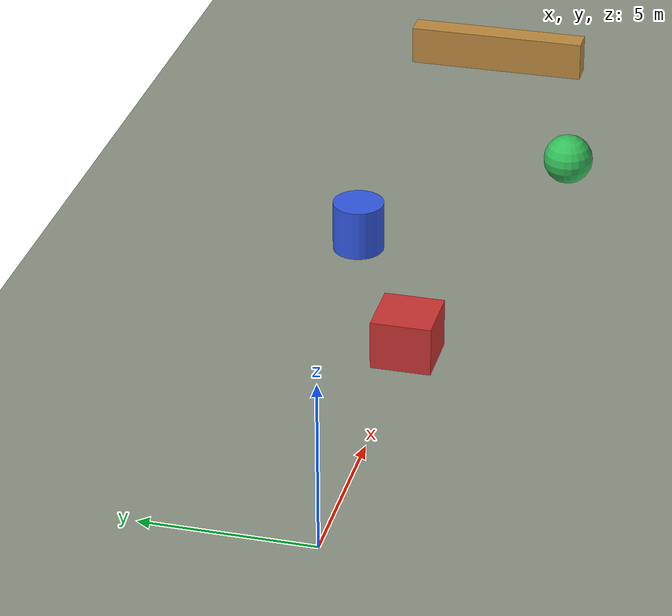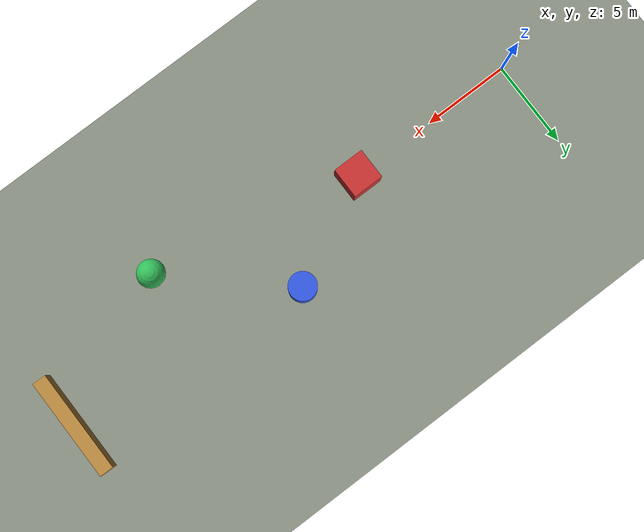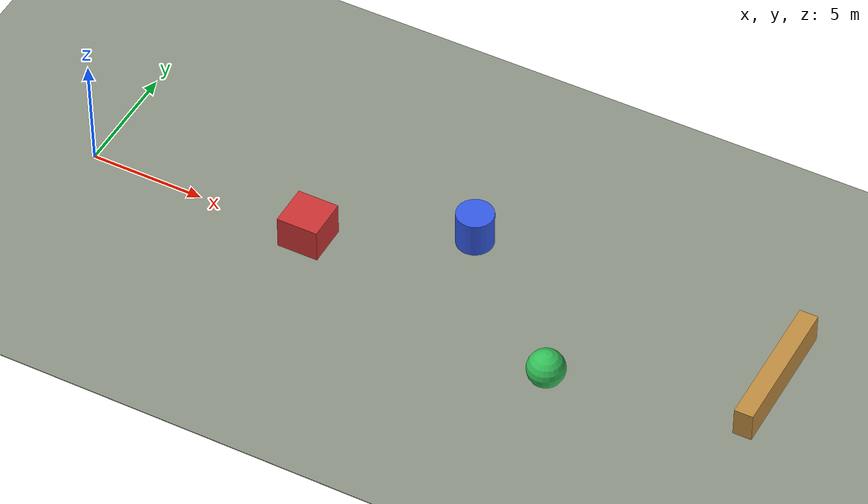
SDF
<?xml version="1.0" ?>
<sdf version="1.7">
  <world name="open_obstacle_world">

    <plugin filename="libignition-gazebo-physics-system.so"
            name="ignition::gazebo::systems::Physics"/>
    <plugin filename="libignition-gazebo-user-commands-system.so"
            name="ignition::gazebo::systems::UserCommands"/>
    <plugin filename="libignition-gazebo-scene-broadcaster-system.so"
            name="ignition::gazebo::systems::SceneBroadcaster"/>
    <plugin filename="libignition-gazebo-sensors-system.so"
            name="ignition::gazebo::systems::Sensors"/>

    <physics name="default" type="ignored">
      <max_step_size>0.001</max_step_size>
      <real_time_factor>1.0</real_time_factor>
    </physics>

    <light name="sun" type="directional">
      <cast_shadows>true</cast_shadows>
      <pose>0 0 20 0 0 0</pose>
      <intensity>2.5</intensity>
      <diffuse>1 1 1 1</diffuse>
      <specular>0.2 0.2 0.2 1</specular>
      <attenuation>
        <range>1000</range>
        <constant>0.9</constant>
        <linear>0.01</linear>
        <quadratic>0.001</quadratic>
      </attenuation>
      <direction>-0.4 0.2 -1</direction>
    </light>

    <model name="ground_plane">
      <static>true</static>
      <pose>0 0 -0.02 0 0 0</pose>
      <link name="ground_link">
        <collision name="collision">
          <geometry>
            <box><size>120 80 0.04</size></box>
          </geometry>
        </collision>
        <visual name="visual">
          <geometry>
            <box><size>120 80 0.04</size></box>
          </geometry>
          <material>
            <ambient>0.55 0.58 0.52 1</ambient>
            <diffuse>0.55 0.58 0.52 1</diffuse>
          </material>
        </visual>
      </link>
    </model>

    <!-- Simple open-field obstacles for early dataset/debug runs. -->
    <model name="box_obstacle_center">
      <static>true</static>
      <pose>10 0 0.75 0 0 0</pose>
      <link name="link">
        <collision name="collision"><geometry><box><size>1.8 1.8 1.5</size></box></geometry></collision>
        <visual name="visual"><geometry><box><size>1.8 1.8 1.5</size></box></geometry><material><ambient>0.8 0.2 0.2 1</ambient><diffuse>0.8 0.2 0.2 1</diffuse></material></visual>
      </link>
    </model>

    <model name="cylinder_obstacle_left">
      <static>true</static>
      <pose>16 3 0.8 0 0 0</pose>
      <link name="link">
        <collision name="collision"><geometry><cylinder><radius>0.8</radius><length>1.6</length></cylinder></geometry></collision>
        <visual name="visual"><geometry><cylinder><radius>0.8</radius><length>1.6</length></cylinder></geometry><material><ambient>0.2 0.35 0.9 1</ambient><diffuse>0.2 0.35 0.9 1</diffuse></material></visual>
      </link>
    </model>

    <model name="sphere_obstacle_right">
      <static>true</static>
      <pose>22 -2.5 0.8 0 0 0</pose>
      <link name="link">
        <collision name="collision"><geometry><sphere><radius>0.8</radius></sphere></geometry></collision>
        <visual name="visual"><geometry><sphere><radius>0.8</radius></sphere></geometry><material><ambient>0.2 0.75 0.35 1</ambient><diffuse>0.2 0.75 0.35 1</diffuse></material></visual>
      </link>
    </model>

    <model name="short_wall_obstacle">
      <static>true</static>
      <pose>30 1.5 0.65 0 0 0</pose>
      <link name="link">
        <collision name="collision"><geometry><box><size>0.8 6.0 1.3</size></box></geometry></collision>
        <visual name="visual"><geometry><box><size>0.8 6.0 1.3</size></box></geometry><material><ambient>0.75 0.55 0.25 1</ambient><diffuse>0.75 0.55 0.25 1</diffuse></material></visual>
      </link>
    </model>

  </world>
</sdf>
